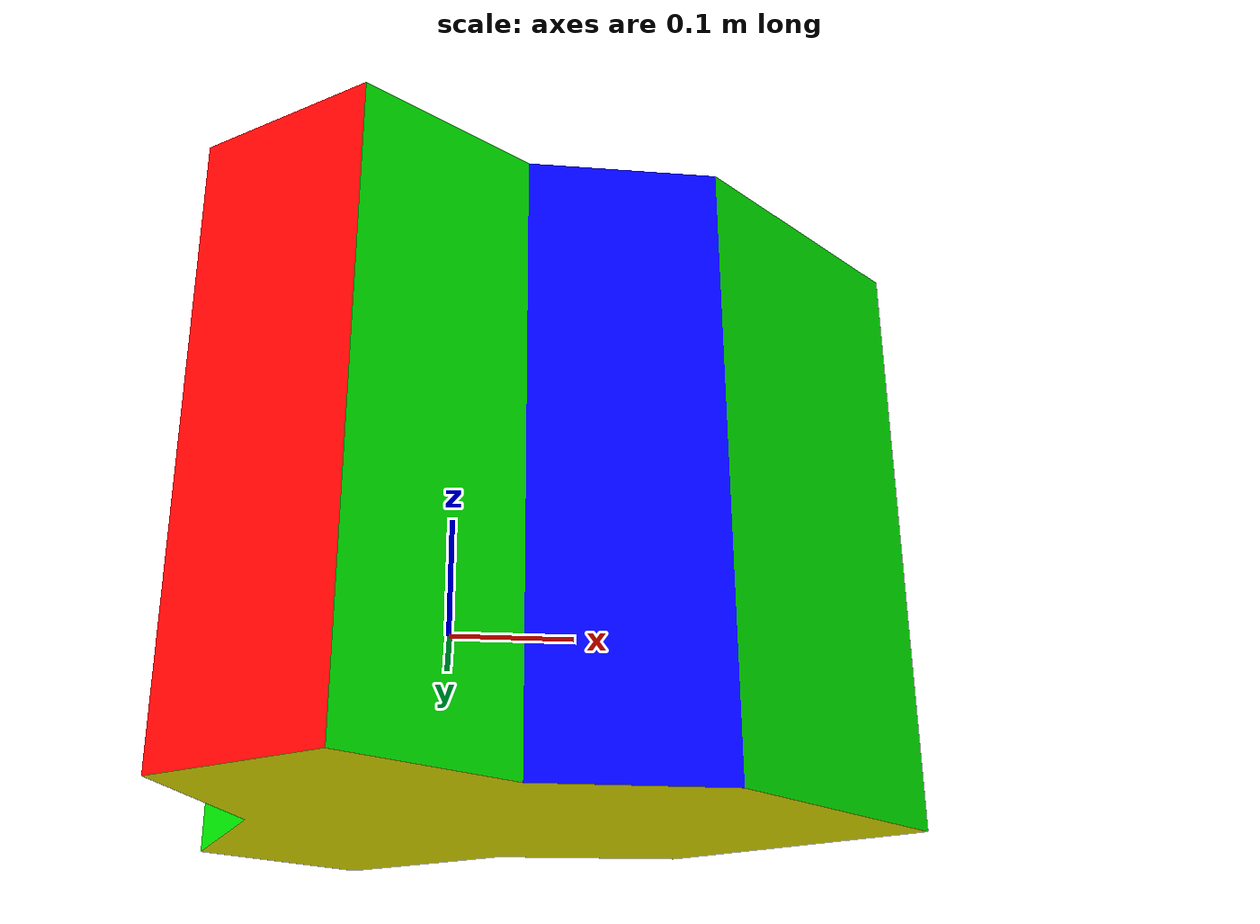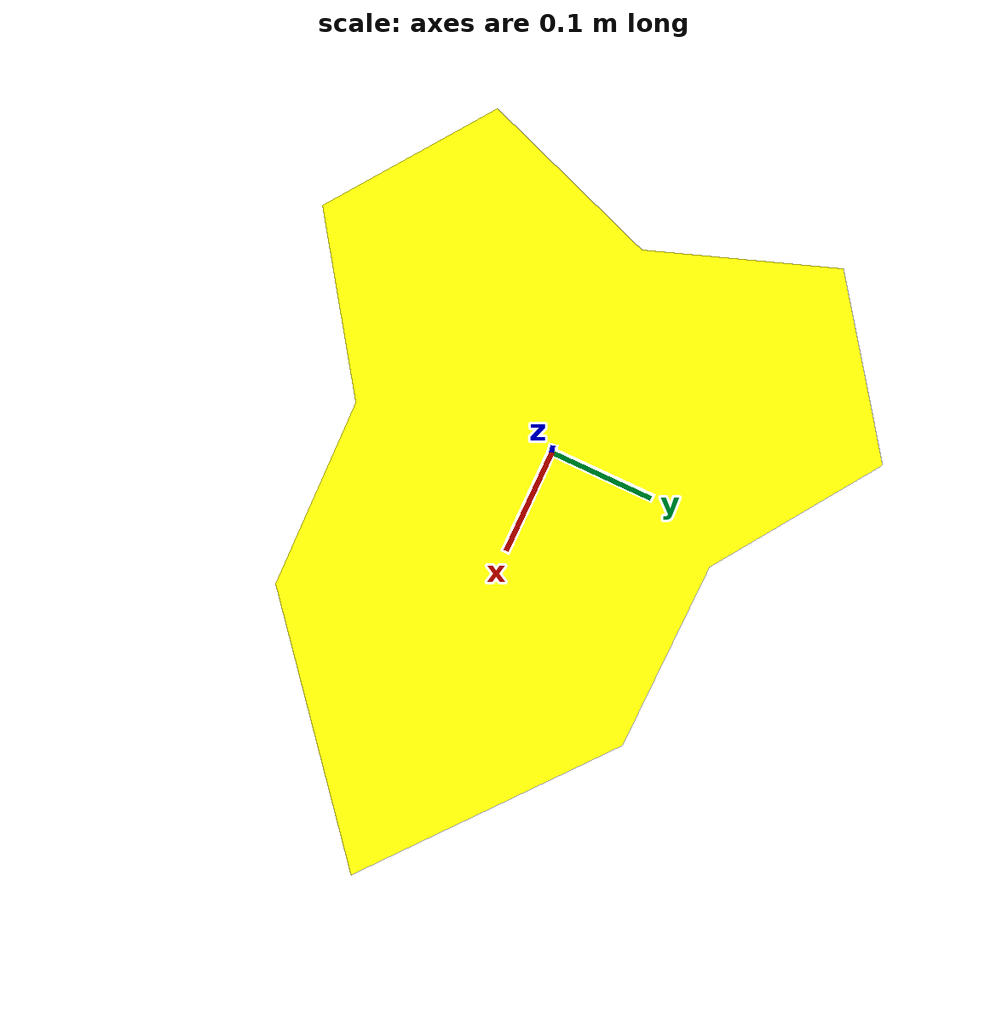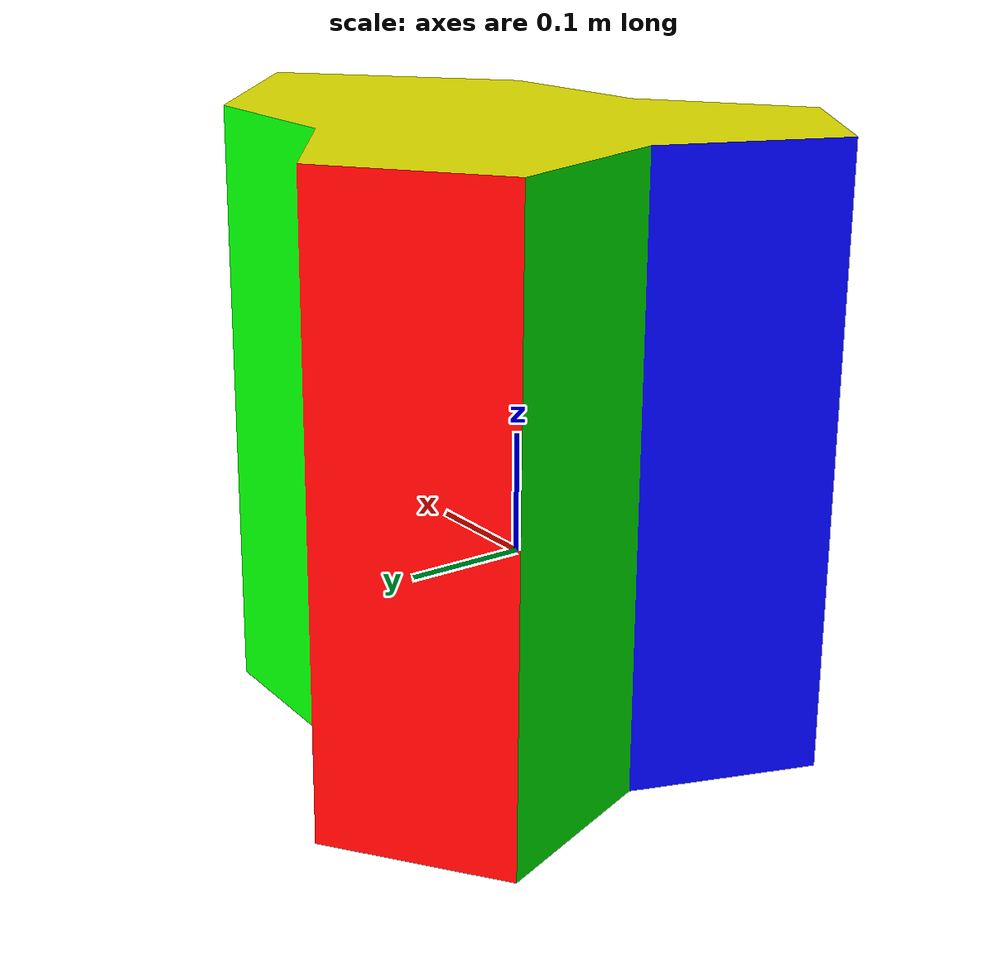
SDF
<?xml version="1.0"?>
<sdf version="1.6">
  <model name="10prism_final">
    <static>true</static>
    <pose>0 0 0 0 0 0</pose>
    <link name="link1">

      <visual name="visual1">
        <geometry>
          <mesh>
            <uri>model://10prism_final/meshes/10prism_final.DAE</uri>
   	    <scale>1 1 1</scale>
          </mesh>
        </geometry>
      </visual>

    </link>
  </model>
</sdf>
